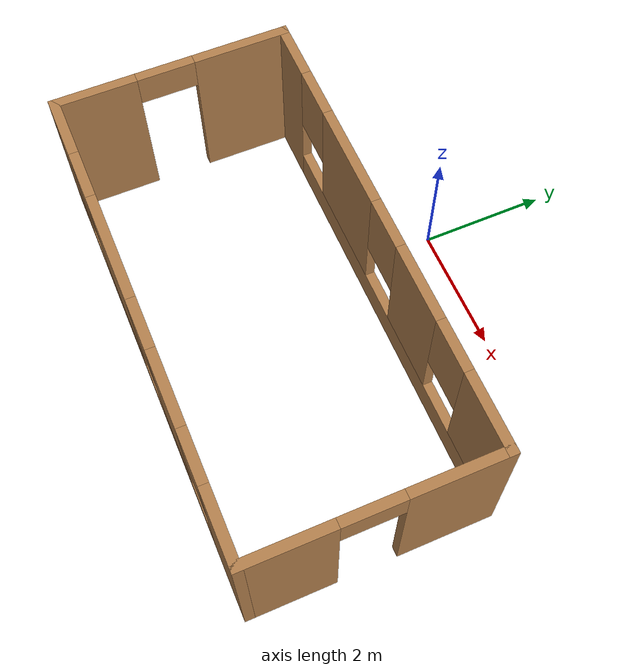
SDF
<?xml version='1.0'?>
<sdf version='1.7'>
  <model name='worlds'>
    <pose>0.755 -2.4725 0 0 -0 0</pose>
    <link name='Wall_0'>
      <pose>0 1.2025 0 0 -0 0</pose>
      <visual name='Wall_0_Visual_0'>
        <pose>-3.2625 0 1.25 0 -0 0</pose>
        <geometry>
          <box>
            <size>0.975 0.15 2.5</size>
          </box>
        </geometry>
        <material>
          <script>
            <uri>file://media/materials/scripts/gazebo.material</uri>
            <name>Gazebo/Wood</name>
          </script>
          <ambient>0.996078 0.47451 0.0196078 1</ambient>
        </material>
        <meta>
          <layer>0</layer>
        </meta>
      </visual>
      <collision name='Wall_0_Collision_0'>
        <geometry>
          <box>
            <size>0.975 0.15 2.5</size>
          </box>
        </geometry>
        <pose>-3.2625 0 1.25 0 -0 0</pose>
      </collision>
      <visual name='Wall_0_Visual_1'>
        <pose>0.4875 0 0.25 0 -0 0</pose>
        <geometry>
          <box>
            <size>6.525 0.15 0.5</size>
          </box>
        </geometry>
        <material>
          <script>
            <uri>file://media/materials/scripts/gazebo.material</uri>
            <name>Gazebo/Wood</name>
          </script>
          <ambient>0.996078 0.47451 0.0196078 1</ambient>
        </material>
        <meta>
          <layer>0</layer>
        </meta>
      </visual>
      <collision name='Wall_0_Collision_1'>
        <geometry>
          <box>
            <size>6.525 0.15 0.5</size>
          </box>
        </geometry>
        <pose>0.4875 0 0.25 0 -0 0</pose>
      </collision>
      <visual name='Wall_0_Visual_2'>
        <pose>-1.135 0 1.5 0 -0 0</pose>
        <geometry>
          <box>
            <size>1.68 0.15 2</size>
          </box>
        </geometry>
        <material>
          <script>
            <uri>file://media/materials/scripts/gazebo.material</uri>
            <name>Gazebo/Wood</name>
          </script>
          <ambient>0.996078 0.47451 0.0196078 1</ambient>
        </material>
        <meta>
          <layer>0</layer>
        </meta>
      </visual>
      <collision name='Wall_0_Collision_2'>
        <geometry>
          <box>
            <size>1.68 0.15 2</size>
          </box>
        </geometry>
        <pose>-1.135 0 1.5 0 -0 0</pose>
      </collision>
      <visual name='Wall_0_Visual_3'>
        <pose>1.115 0 1.5 0 -0 0</pose>
        <geometry>
          <box>
            <size>1.22 0.15 2</size>
          </box>
        </geometry>
        <material>
          <script>
            <uri>file://media/materials/scripts/gazebo.material</uri>
            <name>Gazebo/Wood</name>
          </script>
          <ambient>0.996078 0.47451 0.0196078 1</ambient>
        </material>
        <meta>
          <layer>0</layer>
        </meta>
      </visual>
      <collision name='Wall_0_Collision_3'>
        <geometry>
          <box>
            <size>1.22 0.15 2</size>
          </box>
        </geometry>
        <pose>1.115 0 1.5 0 -0 0</pose>
      </collision>
      <visual name='Wall_0_Visual_4'>
        <pose>3.1375 0 1.5 0 -0 0</pose>
        <geometry>
          <box>
            <size>1.225 0.15 2</size>
          </box>
        </geometry>
        <material>
          <script>
            <uri>file://media/materials/scripts/gazebo.material</uri>
            <name>Gazebo/Wood</name>
          </script>
          <ambient>0.996078 0.47451 0.0196078 1</ambient>
        </material>
        <meta>
          <layer>0</layer>
        </meta>
      </visual>
      <collision name='Wall_0_Collision_4'>
        <geometry>
          <box>
            <size>1.225 0.15 2</size>
          </box>
        </geometry>
        <pose>3.1375 0 1.5 0 -0 0</pose>
      </collision>
      <visual name='Wall_0_Visual_5'>
        <pose>-2.375 0 1.9 0 -0 0</pose>
        <geometry>
          <box>
            <size>0.8 0.15 1.2</size>
          </box>
        </geometry>
        <material>
          <script>
            <uri>file://media/materials/scripts/gazebo.material</uri>
            <name>Gazebo/Wood</name>
          </script>
          <ambient>0.996078 0.47451 0.0196078 1</ambient>
        </material>
        <meta>
          <layer>0</layer>
        </meta>
      </visual>
      <collision name='Wall_0_Collision_5'>
        <geometry>
          <box>
            <size>0.8 0.15 1.2</size>
          </box>
        </geometry>
        <pose>-2.375 0 1.9 0 -0 0</pose>
      </collision>
      <visual name='Wall_0_Visual_6'>
        <pose>0.105 0 1.9 0 -0 0</pose>
        <geometry>
          <box>
            <size>0.8 0.15 1.2</size>
          </box>
        </geometry>
        <material>
          <script>
            <uri>file://media/materials/scripts/gazebo.material</uri>
            <name>Gazebo/Wood</name>
          </script>
          <ambient>0.996078 0.47451 0.0196078 1</ambient>
        </material>
        <meta>
          <layer>0</layer>
        </meta>
      </visual>
      <collision name='Wall_0_Collision_6'>
        <geometry>
          <box>
            <size>0.8 0.15 1.2</size>
          </box>
        </geometry>
        <pose>0.105 0 1.9 0 -0 0</pose>
      </collision>
      <visual name='Wall_0_Visual_7'>
        <pose>2.125 0 1.9 0 -0 0</pose>
        <geometry>
          <box>
            <size>0.8 0.15 1.2</size>
          </box>
        </geometry>
        <material>
          <script>
            <uri>file://media/materials/scripts/gazebo.material</uri>
            <name>Gazebo/Wood</name>
          </script>
          <ambient>0.996078 0.47451 0.0196078 1</ambient>
        </material>
        <meta>
          <layer>0</layer>
        </meta>
      </visual>
      <collision name='Wall_0_Collision_7'>
        <geometry>
          <box>
            <size>0.8 0.15 1.2</size>
          </box>
        </geometry>
        <pose>2.125 0 1.9 0 -0 0</pose>
      </collision>
    </link>
    <link name='Wall_1'>
      <pose>3.675 -0.5975 0 0 -0 -1.5708</pose>
      <visual name='Wall_1_Visual_0'>
        <pose>-1.1325 0 1.25 0 -0 0</pose>
        <geometry>
          <box>
            <size>1.485 0.15 2.5</size>
          </box>
        </geometry>
        <material>
          <script>
            <uri>file://media/materials/scripts/gazebo.material</uri>
            <name>Gazebo/Wood</name>
          </script>
          <ambient>1 1 1 1</ambient>
        </material>
        <meta>
          <layer>0</layer>
        </meta>
      </visual>
      <collision name='Wall_1_Collision_0'>
        <geometry>
          <box>
            <size>1.485 0.15 2.5</size>
          </box>
        </geometry>
        <pose>-1.1325 0 1.25 0 -0 0</pose>
      </collision>
      <visual name='Wall_1_Visual_1'>
        <pose>1.1925 0 1.25 0 -0 0</pose>
        <geometry>
          <box>
            <size>1.365 0.15 2.5</size>
          </box>
        </geometry>
        <material>
          <script>
            <uri>file://media/materials/scripts/gazebo.material</uri>
            <name>Gazebo/Wood</name>
          </script>
          <ambient>1 1 1 1</ambient>
        </material>
        <meta>
          <layer>0</layer>
        </meta>
      </visual>
      <collision name='Wall_1_Collision_1'>
        <geometry>
          <box>
            <size>1.365 0.15 2.5</size>
          </box>
        </geometry>
        <pose>1.1925 0 1.25 0 -0 0</pose>
      </collision>
      <visual name='Wall_1_Visual_2'>
        <pose>0.06 0 2.25 0 -0 0</pose>
        <geometry>
          <box>
            <size>0.9 0.15 0.5</size>
          </box>
        </geometry>
        <material>
          <script>
            <uri>file://media/materials/scripts/gazebo.material</uri>
            <name>Gazebo/Wood</name>
          </script>
          <ambient>1 1 1 1</ambient>
        </material>
        <meta>
          <layer>0</layer>
        </meta>
      </visual>
      <collision name='Wall_1_Collision_2'>
        <geometry>
          <box>
            <size>0.9 0.15 0.5</size>
          </box>
        </geometry>
        <pose>0.06 0 2.25 0 -0 0</pose>
      </collision>
    </link>
    <link name='Wall_2'>
      <pose>0 -2.3975 0 0 -0 3.14159</pose>
      <visual name='Wall_2_Visual_0'>
        <pose>-3.1775 0 1.25 0 -0 0</pose>
        <geometry>
          <box>
            <size>1.145 0.15 2.5</size>
          </box>
        </geometry>
        <material>
          <script>
            <uri>file://media/materials/scripts/gazebo.material</uri>
            <name>Gazebo/Wood</name>
          </script>
          <ambient>0.996078 0.47451 0.0196078 1</ambient>
        </material>
        <meta>
          <layer>0</layer>
        </meta>
      </visual>
      <collision name='Wall_2_Collision_0'>
        <geometry>
          <box>
            <size>1.145 0.15 2.5</size>
          </box>
        </geometry>
        <pose>-3.1775 0 1.25 0 -0 0</pose>
      </collision>
      <visual name='Wall_2_Visual_1'>
        <pose>0.5725 0 0.25 0 -0 0</pose>
        <geometry>
          <box>
            <size>6.355 0.15 0.5</size>
          </box>
        </geometry>
        <material>
          <script>
            <uri>file://media/materials/scripts/gazebo.material</uri>
            <name>Gazebo/Wood</name>
          </script>
          <ambient>0.996078 0.47451 0.0196078 1</ambient>
        </material>
        <meta>
          <layer>0</layer>
        </meta>
      </visual>
      <collision name='Wall_2_Collision_1'>
        <geometry>
          <box>
            <size>6.355 0.15 0.5</size>
          </box>
        </geometry>
        <pose>0.5725 0 0.25 0 -0 0</pose>
      </collision>
      <visual name='Wall_2_Visual_2'>
        <pose>-1.22 0 1.5 0 -0 0</pose>
        <geometry>
          <box>
            <size>1.17 0.15 2</size>
          </box>
        </geometry>
        <material>
          <script>
            <uri>file://media/materials/scripts/gazebo.material</uri>
            <name>Gazebo/Wood</name>
          </script>
          <ambient>0.996078 0.47451 0.0196078 1</ambient>
        </material>
        <meta>
          <layer>0</layer>
        </meta>
      </visual>
      <collision name='Wall_2_Collision_2'>
        <geometry>
          <box>
            <size>1.17 0.15 2</size>
          </box>
        </geometry>
        <pose>-1.22 0 1.5 0 -0 0</pose>
      </collision>
      <visual name='Wall_2_Visual_3'>
        <pose>1.04 0 1.5 0 -0 0</pose>
        <geometry>
          <box>
            <size>1.75 0.15 2</size>
          </box>
        </geometry>
        <material>
          <script>
            <uri>file://media/materials/scripts/gazebo.material</uri>
            <name>Gazebo/Wood</name>
          </script>
          <ambient>0.996078 0.47451 0.0196078 1</ambient>
        </material>
        <meta>
          <layer>0</layer>
        </meta>
      </visual>
      <collision name='Wall_2_Collision_3'>
        <geometry>
          <box>
            <size>1.75 0.15 2</size>
          </box>
        </geometry>
        <pose>1.04 0 1.5 0 -0 0</pose>
      </collision>
      <visual name='Wall_2_Visual_4'>
        <pose>3.2325 0 1.5 0 -0 0</pose>
        <geometry>
          <box>
            <size>1.035 0.15 2</size>
          </box>
        </geometry>
        <material>
          <script>
            <uri>file://media/materials/scripts/gazebo.material</uri>
            <name>Gazebo/Wood</name>
          </script>
          <ambient>0.996078 0.47451 0.0196078 1</ambient>
        </material>
        <meta>
          <layer>0</layer>
        </meta>
      </visual>
      <collision name='Wall_2_Collision_4'>
        <geometry>
          <box>
            <size>1.035 0.15 2</size>
          </box>
        </geometry>
        <pose>3.2325 0 1.5 0 -0 0</pose>
      </collision>
      <visual name='Wall_2_Visual_5'>
        <pose>-2.205 0 1.9 0 -0 0</pose>
        <geometry>
          <box>
            <size>0.8 0.15 1.2</size>
          </box>
        </geometry>
        <material>
          <script>
            <uri>file://media/materials/scripts/gazebo.material</uri>
            <name>Gazebo/Wood</name>
          </script>
          <ambient>0.996078 0.47451 0.0196078 1</ambient>
        </material>
        <meta>
          <layer>0</layer>
        </meta>
      </visual>
      <collision name='Wall_2_Collision_5'>
        <geometry>
          <box>
            <size>0.8 0.15 1.2</size>
          </box>
        </geometry>
        <pose>-2.205 0 1.9 0 -0 0</pose>
      </collision>
      <visual name='Wall_2_Visual_6'>
        <pose>-0.235 0 1.9 0 -0 0</pose>
        <geometry>
          <box>
            <size>0.8 0.15 1.2</size>
          </box>
        </geometry>
        <material>
          <script>
            <uri>file://media/materials/scripts/gazebo.material</uri>
            <name>Gazebo/Wood</name>
          </script>
          <ambient>0.996078 0.47451 0.0196078 1</ambient>
        </material>
        <meta>
          <layer>0</layer>
        </meta>
      </visual>
      <collision name='Wall_2_Collision_6'>
        <geometry>
          <box>
            <size>0.8 0.15 1.2</size>
          </box>
        </geometry>
        <pose>-0.235 0 1.9 0 -0 0</pose>
      </collision>
      <visual name='Wall_2_Visual_7'>
        <pose>2.315 0 1.9 0 -0 0</pose>
        <geometry>
          <box>
            <size>0.8 0.15 1.2</size>
          </box>
        </geometry>
        <material>
          <script>
            <uri>file://media/materials/scripts/gazebo.material</uri>
            <name>Gazebo/Wood</name>
          </script>
          <ambient>0.996078 0.47451 0.0196078 1</ambient>
        </material>
        <meta>
          <layer>0</layer>
        </meta>
      </visual>
      <collision name='Wall_2_Collision_7'>
        <geometry>
          <box>
            <size>0.8 0.15 1.2</size>
          </box>
        </geometry>
        <pose>2.315 0 1.9 0 -0 0</pose>
      </collision>
    </link>
    <link name='Wall_3'>
      <pose>-3.675 -0.5975 0 0 -0 1.5708</pose>
      <visual name='Wall_3_Visual_0'>
        <pose>-1.2125 0 1.25 0 -0 0</pose>
        <geometry>
          <box>
            <size>1.325 0.15 2.5</size>
          </box>
        </geometry>
        <material>
          <script>
            <uri>file://media/materials/scripts/gazebo.material</uri>
            <name>Gazebo/Wood</name>
          </script>
          <ambient>1 1 1 1</ambient>
        </material>
        <meta>
          <layer>0</layer>
        </meta>
      </visual>
      <collision name='Wall_3_Collision_0'>
        <geometry>
          <box>
            <size>1.325 0.15 2.5</size>
          </box>
        </geometry>
        <pose>-1.2125 0 1.25 0 -0 0</pose>
      </collision>
      <visual name='Wall_3_Visual_1'>
        <pose>1.1125 0 1.25 0 -0 0</pose>
        <geometry>
          <box>
            <size>1.525 0.15 2.5</size>
          </box>
        </geometry>
        <material>
          <script>
            <uri>file://media/materials/scripts/gazebo.material</uri>
            <name>Gazebo/Wood</name>
          </script>
          <ambient>1 1 1 1</ambient>
        </material>
        <meta>
          <layer>0</layer>
        </meta>
      </visual>
      <collision name='Wall_3_Collision_1'>
        <geometry>
          <box>
            <size>1.525 0.15 2.5</size>
          </box>
        </geometry>
        <pose>1.1125 0 1.25 0 -0 0</pose>
      </collision>
      <visual name='Wall_3_Visual_2'>
        <pose>-0.1 0 2.25 0 -0 0</pose>
        <geometry>
          <box>
            <size>0.9 0.15 0.5</size>
          </box>
        </geometry>
        <material>
          <script>
            <uri>file://media/materials/scripts/gazebo.material</uri>
            <name>Gazebo/Wood</name>
          </script>
          <ambient>1 1 1 1</ambient>
        </material>
        <meta>
          <layer>0</layer>
        </meta>
      </visual>
      <collision name='Wall_3_Collision_2'>
        <geometry>
          <box>
            <size>0.9 0.15 0.5</size>
          </box>
        </geometry>
        <pose>-0.1 0 2.25 0 -0 0</pose>
      </collision>
    </link>
    <static>1</static>
  </model>
</sdf>
